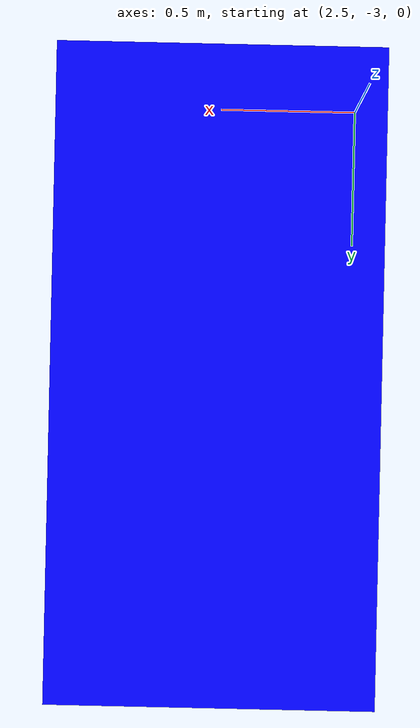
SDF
<?xml version="1.0" ?>
<sdf version="1.10">
    <model name="blueBox1x2x1">
      <static>true</static>
      <pose>3 -2 0.5 0 0 0</pose>
      <link name="link">
        <temperature>300.0</temperature>
        <collision name="collision">
          <geometry><box><size>1 2 1</size></box></geometry>
        </collision>
        <visual name="visual">
          <geometry><box><size>1 2 1</size></box></geometry>
          <material>
            <ambient>0 0 1 1</ambient>
            <diffuse>0 0 1 1</diffuse>
          </material>
          <plugin
            filename="gz-sim-thermal-system"
            name="gz::sim::systems::Thermal">
            <temperature>343.15</temperature>
          </plugin>
        </visual>
      </link>
    </model>
</sdf>
